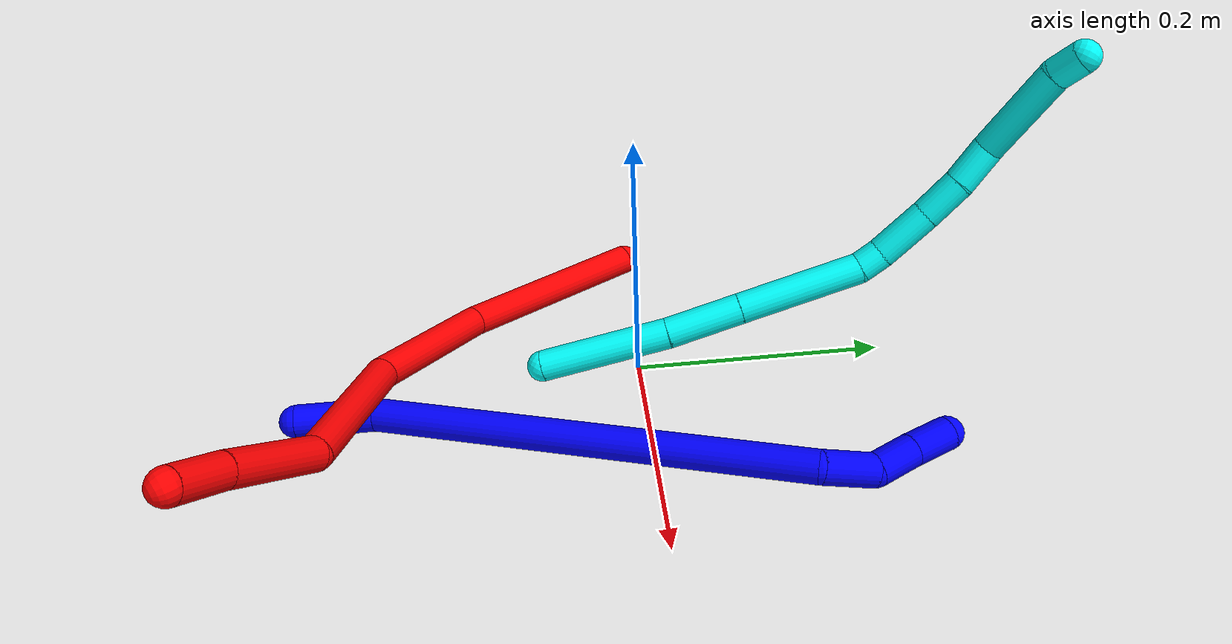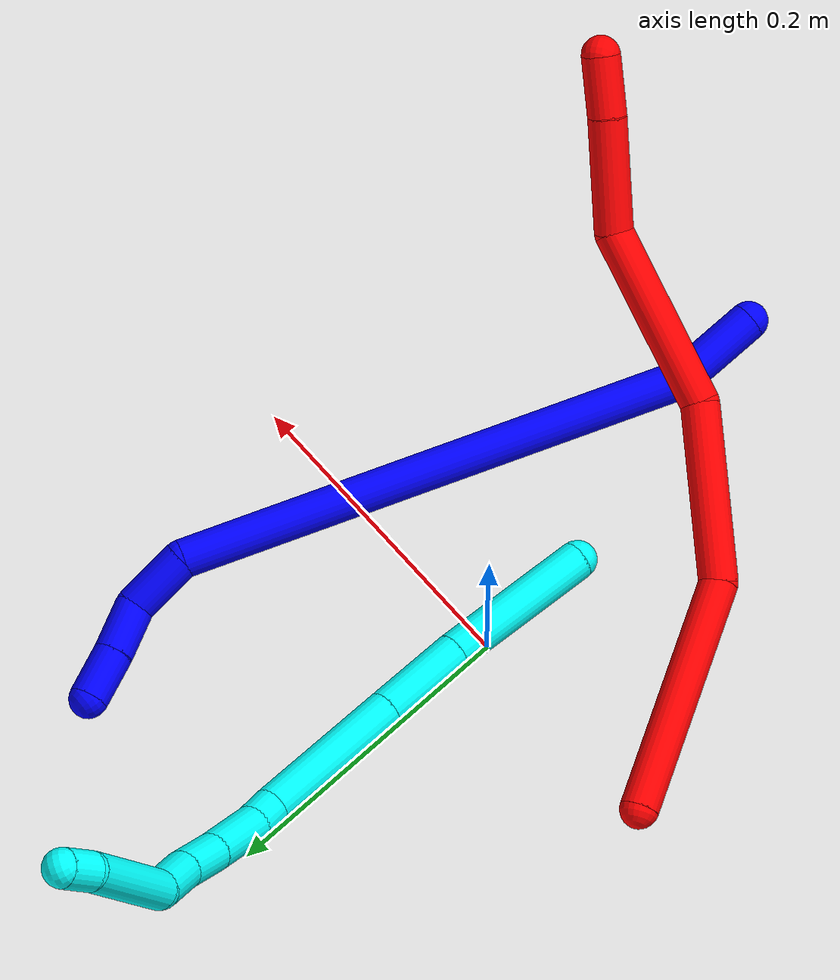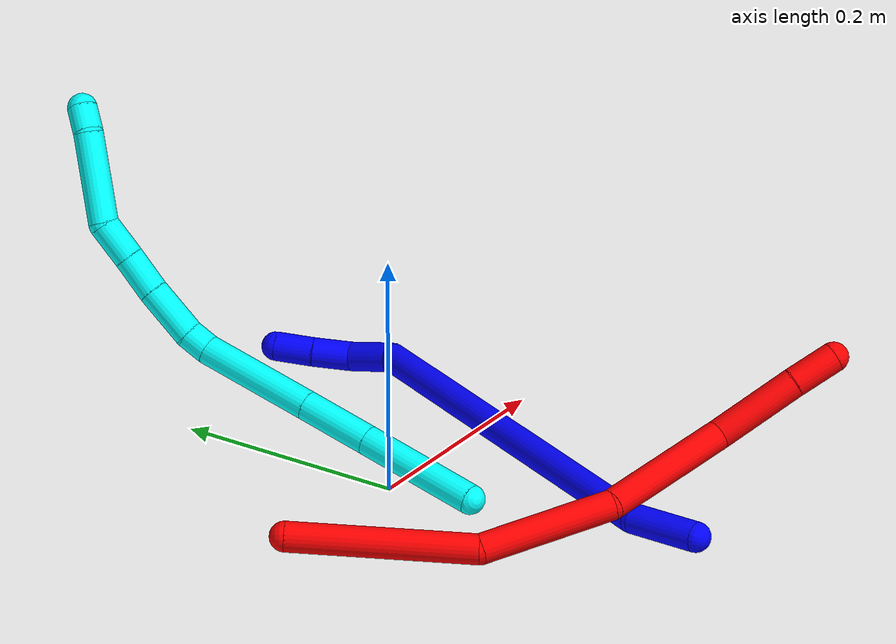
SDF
<sdf version="1.7">
 <world name="default">
  <model name="photoneo_s_sensor">
   <static>1</static>
   <pose>0 0 2 1.57079 1.57079 3.14159</pose>
   <link name="link">
    <inertial><mass>0.1</mass></inertial>
    <sensor name="sensor" type="depth">
     <update_rate>30</update_rate>
     <camera>
      <horizontal_fov>1.22</horizontal_fov>
      <image><width>1920</width><height>1200</height><format>B8G8R8</format></image>
      <clip><near>0.1</near><far>4</far></clip>
      <depth_camera><output>points</output></depth_camera>
     </camera>
     <plugin name="camera_plugin" filename="libgazebo_ros_depth_camera.so">
      <baseline>0.2</baseline>
      <alwaysOn>1</alwaysOn>
      <updateRate>0.0</updateRate>
      <cameraName>camera_ir</cameraName>
      <imageTopicName>/camera/color/image_raw</imageTopicName>
      <cameraInfoTopicName>/camera/color/camera_info</cameraInfoTopicName>
      <depthImageTopicName>/camera/depth/image_raw</depthImageTopicName>
      <depthImageCameraInfoTopicName>/camera/depth/camera_info</depthImageCameraInfoTopicName>
      <pointCloudTopicName>/camera/depth/points</pointCloudTopicName>
      <frameName>fr_optical</frameName>
      <pointCloudCutoff>0.1</pointCloudCutoff>
      <pointCloudCutoffMax>2.0</pointCloudCutoffMax>
      <distortionK1>0</distortionK1>
      <distortionK2>0</distortionK2>
      <distortionK3>0</distortionK3>
      <distortionT1>0</distortionT1>
      <distortionT2>0</distortionT2>
      <CxPrime>0</CxPrime>
      <Cx>0</Cx>
      <Cy>0</Cy>
      <focalLength>0</focalLength>
      <hackBaseline>0</hackBaseline>
     </plugin>
    </sensor>
   </link>
  </model>
  <model name="bin">
   <static>1</static>
   <link name="bottom">
    <collision name="collision-bottom">
     <pose>0 0 -0.01 0 -0 0</pose>
     <geometry><box><size>0.8 0.6 0.02</size></box></geometry>
     <surface>
      <friction><ode><mu>100</mu><mu2>100</mu2></ode></friction>
      <contact><collide_bitmask>65535</collide_bitmask></contact>
     </surface>
    </collision>
   </link>
   <link name="west_wall">
    <collision name="collision-west_wall">
     <pose>-0.41 0 0.1 0 -0 0</pose>
     <geometry><box><size>0.02 0.6 0.2</size></box></geometry>
     <surface>
      <friction><ode><mu>100</mu><mu2>100</mu2></ode></friction>
      <contact><collide_bitmask>65535</collide_bitmask></contact>
     </surface>
    </collision>
   </link>
   <link name="east_wall">
    <collision name="collision-east_wall">
     <pose>0.41 0 0.1 0 -0 0</pose>
     <geometry><box><size>0.02 0.6 0.2</size></box></geometry>
     <surface>
      <friction><ode><mu>100</mu><mu2>100</mu2></ode></friction>
      <contact><collide_bitmask>65535</collide_bitmask></contact>
     </surface>
    </collision>
   </link>
   <link name="south_wall">
    <collision name="collision-south_wall">
     <pose>0 -0.31 0.1 0 -0 0</pose>
     <geometry><box><size>0.8 0.02 0.2</size></box></geometry>
     <surface>
      <friction><ode><mu>100</mu><mu2>100</mu2></ode></friction>
      <contact><collide_bitmask>65535</collide_bitmask></contact>
     </surface>
    </collision>
   </link>
   <link name="north_wall">
    <collision name="collision-north_wall">
     <pose>0 0.31 0.1 0 -0 0</pose>
     <geometry><box><size>0.8 0.02 0.2</size></box></geometry>
     <surface>
      <friction><ode><mu>100</mu><mu2>100</mu2></ode></friction>
      <contact><collide_bitmask>65535</collide_bitmask></contact>
     </surface>
    </collision>
   </link>
  </model>
  <model name="1">
   <static>0</static>
   <link name="1">
    <collision name="collision-cylinder-e_1_1_4">
     <pose>-0.001002 0.000346 0.029081 -0.011899 -0.034436 0.000205</pose>
     <geometry><cylinder><radius>0.0125</radius><length>0.058201</length></cylinder></geometry>
     <surface>
      <friction><ode><mu>1.16</mu><mu2>1.16</mu2><slip1>0</slip1><slip2>0</slip2></ode></friction>
      <contact><ode><kp>1e+06</kp><kd>1</kd><max_vel>0</max_vel><min_depth>0.001</min_depth></ode></contact>
     </surface>
    </collision>
    <visual name="visual-cylinder-e_1_1_4">
     <pose>-0.001002 0.000346 0.029081 -0.011899 -0.034436 0.000205</pose>
     <geometry><cylinder><radius>0.0125</radius><length>0.058201</length></cylinder></geometry>
     <material><ambient>0 0 1 1</ambient></material>
    </visual>
    <collision name="collision-cylinder-e_2_4_5">
     <pose>0.049859 0.017233 0.215816 -0.104536 0.316196 -0.016681</pose>
     <geometry><cylinder><radius>0.0125</radius><length>0.333575</length></cylinder></geometry>
     <surface>
      <friction><ode><mu>1.16</mu><mu2>1.16</mu2><slip1>0</slip1><slip2>0</slip2></ode></friction>
      <contact><ode><kp>1e+06</kp><kd>1</kd><max_vel>0</max_vel><min_depth>0.001</min_depth></ode></contact>
     </surface>
    </collision>
    <visual name="visual-cylinder-e_2_4_5">
     <pose>0.049859 0.017233 0.215816 -0.104536 0.316196 -0.016681</pose>
     <geometry><cylinder><radius>0.0125</radius><length>0.333575</length></cylinder></geometry>
     <material><ambient>0 0 1 1</ambient></material>
    </visual>
    <collision name="collision-cylinder-e_3_5_6">
     <pose>0.098798 0.038088 0.393471 -0.212479 -0.141961 0.015164</pose>
     <geometry><cylinder><radius>0.0125</radius><length>0.041338</length></cylinder></geometry>
     <surface>
      <friction><ode><mu>1.16</mu><mu2>1.16</mu2><slip1>0</slip1><slip2>0</slip2></ode></friction>
      <contact><ode><kp>1e+06</kp><kd>1</kd><max_vel>0</max_vel><min_depth>0.001</min_depth></ode></contact>
     </surface>
    </collision>
    <visual name="visual-cylinder-e_3_5_6">
     <pose>0.098798 0.038088 0.393471 -0.212479 -0.141961 0.015164</pose>
     <geometry><cylinder><radius>0.0125</radius><length>0.041338</length></cylinder></geometry>
     <material><ambient>0 0 1 1</ambient></material>
    </visual>
    <collision name="collision-cylinder-e_4_6_7">
     <pose>0.088992 0.03901 0.428486 0.222249 -0.420399 -0.047604</pose>
     <geometry><cylinder><radius>0.0125</radius><length>0.033723</length></cylinder></geometry>
     <surface>
      <friction><ode><mu>1.16</mu><mu2>1.16</mu2><slip1>0</slip1><slip2>0</slip2></ode></friction>
      <contact><ode><kp>1e+06</kp><kd>1</kd><max_vel>0</max_vel><min_depth>0.001</min_depth></ode></contact>
     </surface>
    </collision>
    <visual name="visual-cylinder-e_4_6_7">
     <pose>0.088992 0.03901 0.428486 0.222249 -0.420399 -0.047604</pose>
     <geometry><cylinder><radius>0.0125</radius><length>0.033723</length></cylinder></geometry>
     <material><ambient>0 0 1 1</ambient></material>
    </visual>
    <collision name="collision-cylinder-e_5_7_2">
     <pose>0.076365 0.032524 0.458745 0.200191 -0.353805 -0.035905</pose>
     <geometry><cylinder><radius>0.0125</radius><length>0.033163</length></cylinder></geometry>
     <surface>
      <friction><ode><mu>1.16</mu><mu2>1.16</mu2><slip1>0</slip1><slip2>0</slip2></ode></friction>
      <contact><ode><kp>1e+06</kp><kd>1</kd><max_vel>0</max_vel><min_depth>0.001</min_depth></ode></contact>
     </surface>
    </collision>
    <visual name="visual-cylinder-e_5_7_2">
     <pose>0.076365 0.032524 0.458745 0.200191 -0.353805 -0.035905</pose>
     <geometry><cylinder><radius>0.0125</radius><length>0.033163</length></cylinder></geometry>
     <material><ambient>0 0 1 1</ambient></material>
    </visual>
    <collision name="collision-sphere-2">
     <pose>0.07062 0.029431 0.473989 0 -0 0</pose>
     <geometry><sphere><radius>0.0125</radius></sphere></geometry>
     <surface>
      <friction><ode><mu>1.16</mu><mu2>1.16</mu2><slip1>0</slip1><slip2>0</slip2></ode></friction>
      <contact><ode><kp>1e+06</kp><kd>1</kd><max_vel>0</max_vel><min_depth>0.001</min_depth></ode></contact>
     </surface>
    </collision>
    <visual name="visual-sphere-2">
     <pose>0.07062 0.029431 0.473989 0 -0 0</pose>
     <geometry><sphere><radius>0.0125</radius></sphere></geometry>
     <material><ambient>0 0 1 1</ambient></material>
    </visual>
    <collision name="collision-sphere-7">
     <pose>0.08211 0.035617 0.443501 0 -0 0</pose>
     <geometry><sphere><radius>0.0125</radius></sphere></geometry>
     <surface>
      <friction><ode><mu>1.16</mu><mu2>1.16</mu2><slip1>0</slip1><slip2>0</slip2></ode></friction>
      <contact><ode><kp>1e+06</kp><kd>1</kd><max_vel>0</max_vel><min_depth>0.001</min_depth></ode></contact>
     </surface>
    </collision>
    <visual name="visual-sphere-7">
     <pose>0.08211 0.035617 0.443501 0 -0 0</pose>
     <geometry><sphere><radius>0.0125</radius></sphere></geometry>
     <material><ambient>0 0 1 1</ambient></material>
    </visual>
    <collision name="collision-sphere-6">
     <pose>0.095873 0.042403 0.413472 0 -0 0</pose>
     <geometry><sphere><radius>0.0125</radius></sphere></geometry>
     <surface>
      <friction><ode><mu>1.16</mu><mu2>1.16</mu2><slip1>0</slip1><slip2>0</slip2></ode></friction>
      <contact><ode><kp>1e+06</kp><kd>1</kd><max_vel>0</max_vel><min_depth>0.001</min_depth></ode></contact>
     </surface>
    </collision>
    <visual name="visual-sphere-6">
     <pose>0.095873 0.042403 0.413472 0 -0 0</pose>
     <geometry><sphere><radius>0.0125</radius></sphere></geometry>
     <material><ambient>0 0 1 1</ambient></material>
    </visual>
    <collision name="collision-sphere-5">
     <pose>0.101722 0.033774 0.37347 0 -0 0</pose>
     <geometry><sphere><radius>0.0125</radius></sphere></geometry>
     <surface>
      <friction><ode><mu>1.16</mu><mu2>1.16</mu2><slip1>0</slip1><slip2>0</slip2></ode></friction>
      <contact><ode><kp>1e+06</kp><kd>1</kd><max_vel>0</max_vel><min_depth>0.001</min_depth></ode></contact>
     </surface>
    </collision>
    <visual name="visual-sphere-5">
     <pose>0.101722 0.033774 0.37347 0 -0 0</pose>
     <geometry><sphere><radius>0.0125</radius></sphere></geometry>
     <material><ambient>0 0 1 1</ambient></material>
    </visual>
    <collision name="collision-sphere-1">
     <geometry><sphere><radius>0.0125</radius></sphere></geometry>
     <surface>
      <friction><ode><mu>1.16</mu><mu2>1.16</mu2><slip1>0</slip1><slip2>0</slip2></ode></friction>
      <contact><ode><kp>1e+06</kp><kd>1</kd><max_vel>0</max_vel><min_depth>0.001</min_depth></ode></contact>
     </surface>
    </collision>
    <visual name="visual-sphere-1">
     <geometry><sphere><radius>0.0125</radius></sphere></geometry>
     <material><ambient>0 0 1 1</ambient></material>
    </visual>
    <collision name="collision-sphere-4">
     <pose>-0.002004 0.000692 0.058163 0 -0 0</pose>
     <geometry><sphere><radius>0.0125</radius></sphere></geometry>
     <surface>
      <friction><ode><mu>1.16</mu><mu2>1.16</mu2><slip1>0</slip1><slip2>0</slip2></ode></friction>
      <contact><ode><kp>1e+06</kp><kd>1</kd><max_vel>0</max_vel><min_depth>0.001</min_depth></ode></contact>
     </surface>
    </collision>
    <visual name="visual-sphere-4">
     <pose>-0.002004 0.000692 0.058163 0 -0 0</pose>
     <geometry><sphere><radius>0.0125</radius></sphere></geometry>
     <material><ambient>0 0 1 1</ambient></material>
    </visual>
    <inertial>
     <pose>0.052382 0.019474 0.239224 0 -0 0</pose>
     <mass>0.5</mass>
     <inertia>
      <ixx>0.002942</ixx>
      <ixy>0</ixy>
      <ixz>0</ixz>
      <iyy>0.003078</iyy>
      <iyz>0</iyz>
      <izz>-0.001232</izz>
     </inertia>
    </inertial>
   </link>
   <pose>0.045534 -0.261765 0.011474 -1.54544 -0.373732 -0.039487</pose>
  </model>
  <model name="2">
   <static>0</static>
   <link name="2">
    <collision name="collision-cylinder-e_1_1_4">
     <pose>-0.005512 0.004189 0.07675 -0.054523 -0.071584 0.001953</pose>
     <geometry><cylinder><radius>0.0125</radius><length>0.154123</length></cylinder></geometry>
     <surface>
      <friction><ode><mu>1.16</mu><mu2>1.16</mu2><slip1>0</slip1><slip2>0</slip2></ode></friction>
      <contact><ode><kp>1e+06</kp><kd>1</kd><max_vel>0</max_vel><min_depth>0.001</min_depth></ode></contact>
     </surface>
    </collision>
    <visual name="visual-cylinder-e_1_1_4">
     <pose>-0.005512 0.004189 0.07675 -0.054523 -0.071584 0.001953</pose>
     <geometry><cylinder><radius>0.0125</radius><length>0.154123</length></cylinder></geometry>
     <material><ambient>1 0 0 1</ambient></material>
    </visual>
    <collision name="collision-cylinder-e_2_4_5">
     <pose>0.010562 0.00473 0.205711 0.069759 0.391175 0.013826</pose>
     <geometry><cylinder><radius>0.0125</radius><length>0.113229</length></cylinder></geometry>
     <surface>
      <friction><ode><mu>1.16</mu><mu2>1.16</mu2><slip1>0</slip1><slip2>0</slip2></ode></friction>
      <contact><ode><kp>1e+06</kp><kd>1</kd><max_vel>0</max_vel><min_depth>0.001</min_depth></ode></contact>
     </surface>
    </collision>
    <visual name="visual-cylinder-e_2_4_5">
     <pose>0.010562 0.00473 0.205711 0.069759 0.391175 0.013826</pose>
     <geometry><cylinder><radius>0.0125</radius><length>0.113229</length></cylinder></geometry>
     <material><ambient>1 0 0 1</ambient></material>
    </visual>
    <collision name="collision-cylinder-e_3_5_6">
     <pose>0.069787 -0.014288 0.301711 0.337545 0.681441 0.120679</pose>
     <geometry><cylinder><radius>0.0125</radius><length>0.119505</length></cylinder></geometry>
     <surface>
      <friction><ode><mu>1.16</mu><mu2>1.16</mu2><slip1>0</slip1><slip2>0</slip2></ode></friction>
      <contact><ode><kp>1e+06</kp><kd>1</kd><max_vel>0</max_vel><min_depth>0.001</min_depth></ode></contact>
     </surface>
    </collision>
    <visual name="visual-cylinder-e_3_5_6">
     <pose>0.069787 -0.014288 0.301711 0.337545 0.681441 0.120679</pose>
     <geometry><cylinder><radius>0.0125</radius><length>0.119505</length></cylinder></geometry>
     <material><ambient>1 0 0 1</ambient></material>
    </visual>
    <collision name="collision-cylinder-e_4_6_7">
     <pose>0.127453 -0.021565 0.375608 -0.262536 0.571003 -0.077466</pose>
     <geometry><cylinder><radius>0.0125</radius><length>0.074109</length></cylinder></geometry>
     <surface>
      <friction><ode><mu>1.16</mu><mu2>1.16</mu2><slip1>0</slip1><slip2>0</slip2></ode></friction>
      <contact><ode><kp>1e+06</kp><kd>1</kd><max_vel>0</max_vel><min_depth>0.001</min_depth></ode></contact>
     </surface>
    </collision>
    <visual name="visual-cylinder-e_4_6_7">
     <pose>0.127453 -0.021565 0.375608 -0.262536 0.571003 -0.077466</pose>
     <geometry><cylinder><radius>0.0125</radius><length>0.074109</length></cylinder></geometry>
     <material><ambient>1 0 0 1</ambient></material>
    </visual>
    <collision name="collision-cylinder-e_5_7_2">
     <pose>0.158024 -0.010706 0.421904 -0.169351 0.570711 -0.04979</pose>
     <geometry><cylinder><radius>0.0125</radius><length>0.039033</length></cylinder></geometry>
     <surface>
      <friction><ode><mu>1.16</mu><mu2>1.16</mu2><slip1>0</slip1><slip2>0</slip2></ode></friction>
      <contact><ode><kp>1e+06</kp><kd>1</kd><max_vel>0</max_vel><min_depth>0.001</min_depth></ode></contact>
     </surface>
    </collision>
    <visual name="visual-cylinder-e_5_7_2">
     <pose>0.158024 -0.010706 0.421904 -0.169351 0.570711 -0.04979</pose>
     <geometry><cylinder><radius>0.0125</radius><length>0.039033</length></cylinder></geometry>
     <material><ambient>1 0 0 1</ambient></material>
    </visual>
    <collision name="collision-sphere-2">
     <pose>0.168567 -0.007938 0.438093 0 -0 0</pose>
     <geometry><sphere><radius>0.0125</radius></sphere></geometry>
     <surface>
      <friction><ode><mu>1.16</mu><mu2>1.16</mu2><slip1>0</slip1><slip2>0</slip2></ode></friction>
      <contact><ode><kp>1e+06</kp><kd>1</kd><max_vel>0</max_vel><min_depth>0.001</min_depth></ode></contact>
     </surface>
    </collision>
    <visual name="visual-sphere-2">
     <pose>0.168567 -0.007938 0.438093 0 -0 0</pose>
     <geometry><sphere><radius>0.0125</radius></sphere></geometry>
     <material><ambient>1 0 0 1</ambient></material>
    </visual>
    <collision name="collision-sphere-7">
     <pose>0.14748 -0.013474 0.405716 0 -0 0</pose>
     <geometry><sphere><radius>0.0125</radius></sphere></geometry>
     <surface>
      <friction><ode><mu>1.16</mu><mu2>1.16</mu2><slip1>0</slip1><slip2>0</slip2></ode></friction>
      <contact><ode><kp>1e+06</kp><kd>1</kd><max_vel>0</max_vel><min_depth>0.001</min_depth></ode></contact>
     </surface>
    </collision>
    <visual name="visual-sphere-7">
     <pose>0.14748 -0.013474 0.405716 0 -0 0</pose>
     <geometry><sphere><radius>0.0125</radius></sphere></geometry>
     <material><ambient>1 0 0 1</ambient></material>
    </visual>
    <collision name="collision-sphere-6">
     <pose>0.107426 -0.029657 0.3455 0 -0 0</pose>
     <geometry><sphere><radius>0.0125</radius></sphere></geometry>
     <surface>
      <friction><ode><mu>1.16</mu><mu2>1.16</mu2><slip1>0</slip1><slip2>0</slip2></ode></friction>
      <contact><ode><kp>1e+06</kp><kd>1</kd><max_vel>0</max_vel><min_depth>0.001</min_depth></ode></contact>
     </surface>
    </collision>
    <visual name="visual-sphere-6">
     <pose>0.107426 -0.029657 0.3455 0 -0 0</pose>
     <geometry><sphere><radius>0.0125</radius></sphere></geometry>
     <material><ambient>1 0 0 1</ambient></material>
    </visual>
    <collision name="collision-sphere-5">
     <pose>0.032148 0.001081 0.257922 0 -0 0</pose>
     <geometry><sphere><radius>0.0125</radius></sphere></geometry>
     <surface>
      <friction><ode><mu>1.16</mu><mu2>1.16</mu2><slip1>0</slip1><slip2>0</slip2></ode></friction>
      <contact><ode><kp>1e+06</kp><kd>1</kd><max_vel>0</max_vel><min_depth>0.001</min_depth></ode></contact>
     </surface>
    </collision>
    <visual name="visual-sphere-5">
     <pose>0.032148 0.001081 0.257922 0 -0 0</pose>
     <geometry><sphere><radius>0.0125</radius></sphere></geometry>
     <material><ambient>1 0 0 1</ambient></material>
    </visual>
    <collision name="collision-sphere-1">
     <geometry><sphere><radius>0.0125</radius></sphere></geometry>
     <surface>
      <friction><ode><mu>1.16</mu><mu2>1.16</mu2><slip1>0</slip1><slip2>0</slip2></ode></friction>
      <contact><ode><kp>1e+06</kp><kd>1</kd><max_vel>0</max_vel><min_depth>0.001</min_depth></ode></contact>
     </surface>
    </collision>
    <visual name="visual-sphere-1">
     <geometry><sphere><radius>0.0125</radius></sphere></geometry>
     <material><ambient>1 0 0 1</ambient></material>
    </visual>
    <collision name="collision-sphere-4">
     <pose>-0.011023 0.008378 0.1535 0 -0 0</pose>
     <geometry><sphere><radius>0.0125</radius></sphere></geometry>
     <surface>
      <friction><ode><mu>1.16</mu><mu2>1.16</mu2><slip1>0</slip1><slip2>0</slip2></ode></friction>
      <contact><ode><kp>1e+06</kp><kd>1</kd><max_vel>0</max_vel><min_depth>0.001</min_depth></ode></contact>
     </surface>
    </collision>
    <visual name="visual-sphere-4">
     <pose>-0.011023 0.008378 0.1535 0 -0 0</pose>
     <geometry><sphere><radius>0.0125</radius></sphere></geometry>
     <material><ambient>1 0 0 1</ambient></material>
    </visual>
    <inertial>
     <pose>0.0486 -0.005085 0.230963 0 -0 0</pose>
     <mass>0.5</mass>
     <inertia>
      <ixx>0.000602</ixx>
      <ixy>0</ixy>
      <ixz>0</ixz>
      <iyy>0.000632</iyy>
      <iyz>0</iyz>
      <izz>-8.7e-05</izz>
     </inertia>
    </inertial>
   </link>
   <pose>-0.142626 0.002413 0.017612 1.60759 -0.706862 0.571937</pose>
  </model>
  <model name="3">
   <static>0</static>
   <link name="3">
    <collision name="collision-cylinder-e_1_1_4">
     <pose>-0.021721 0.026399 0.039145 -0.59333 -0.431173 0.133685</pose>
     <geometry><cylinder><radius>0.0125</radius><length>0.103944</length></cylinder></geometry>
     <surface>
      <friction><ode><mu>1.16</mu><mu2>1.16</mu2><slip1>0</slip1><slip2>0</slip2></ode></friction>
      <contact><ode><kp>1e+06</kp><kd>1</kd><max_vel>0</max_vel><min_depth>0.001</min_depth></ode></contact>
     </surface>
    </collision>
    <visual name="visual-cylinder-e_1_1_4">
     <pose>-0.021721 0.026399 0.039145 -0.59333 -0.431173 0.133685</pose>
     <geometry><cylinder><radius>0.0125</radius><length>0.103944</length></cylinder></geometry>
     <material><ambient>0.003922 1 0.996078 1</ambient></material>
    </visual>
    <collision name="collision-cylinder-e_2_4_5">
     <pose>-0.056556 0.069967 0.099634 -0.677416 -0.446521 0.159629</pose>
     <geometry><cylinder><radius>0.0125</radius><length>0.060738</length></cylinder></geometry>
     <surface>
      <friction><ode><mu>1.16</mu><mu2>1.16</mu2><slip1>0</slip1><slip2>0</slip2></ode></friction>
      <contact><ode><kp>1e+06</kp><kd>1</kd><max_vel>0</max_vel><min_depth>0.001</min_depth></ode></contact>
     </surface>
    </collision>
    <visual name="visual-cylinder-e_2_4_5">
     <pose>-0.056556 0.069967 0.099634 -0.677416 -0.446521 0.159629</pose>
     <geometry><cylinder><radius>0.0125</radius><length>0.060738</length></cylinder></geometry>
     <material><ambient>0.003922 1 0.996078 1</ambient></material>
    </visual>
    <collision name="collision-cylinder-e_3_5_6">
     <pose>-0.091168 0.115599 0.156275 -0.678638 -0.442717 0.158536</pose>
     <geometry><cylinder><radius>0.0125</radius><length>0.100364</length></cylinder></geometry>
     <surface>
      <friction><ode><mu>1.16</mu><mu2>1.16</mu2><slip1>0</slip1><slip2>0</slip2></ode></friction>
      <contact><ode><kp>1e+06</kp><kd>1</kd><max_vel>0</max_vel><min_depth>0.001</min_depth></ode></contact>
     </surface>
    </collision>
    <visual name="visual-cylinder-e_3_5_6">
     <pose>-0.091168 0.115599 0.156275 -0.678638 -0.442717 0.158536</pose>
     <geometry><cylinder><radius>0.0125</radius><length>0.100364</length></cylinder></geometry>
     <material><ambient>0.003922 1 0.996078 1</ambient></material>
    </visual>
    <collision name="collision-cylinder-e_4_6_7">
     <pose>-0.118799 0.150633 0.196464 -0.930723 -0.642686 0.331246</pose>
     <geometry><cylinder><radius>0.0125</radius><length>0.020465</length></cylinder></geometry>
     <surface>
      <friction><ode><mu>1.16</mu><mu2>1.16</mu2><slip1>0</slip1><slip2>0</slip2></ode></friction>
      <contact><ode><kp>1e+06</kp><kd>1</kd><max_vel>0</max_vel><min_depth>0.001</min_depth></ode></contact>
     </surface>
    </collision>
    <visual name="visual-cylinder-e_4_6_7">
     <pose>-0.118799 0.150633 0.196464 -0.930723 -0.642686 0.331246</pose>
     <geometry><cylinder><radius>0.0125</radius><length>0.020465</length></cylinder></geometry>
     <material><ambient>0.003922 1 0.996078 1</ambient></material>
    </visual>
    <collision name="collision-cylinder-e_5_7_8">
     <pose>-0.142069 0.170055 0.209764 -0.991462 -0.840079 0.473962</pose>
     <geometry><cylinder><radius>0.0125</radius><length>0.046024</length></cylinder></geometry>
     <surface>
      <friction><ode><mu>1.16</mu><mu2>1.16</mu2><slip1>0</slip1><slip2>0</slip2></ode></friction>
      <contact><ode><kp>1e+06</kp><kd>1</kd><max_vel>0</max_vel><min_depth>0.001</min_depth></ode></contact>
     </surface>
    </collision>
    <visual name="visual-cylinder-e_5_7_8">
     <pose>-0.142069 0.170055 0.209764 -0.991462 -0.840079 0.473962</pose>
     <geometry><cylinder><radius>0.0125</radius><length>0.046024</length></cylinder></geometry>
     <material><ambient>0.003922 1 0.996078 1</ambient></material>
    </visual>
    <collision name="collision-cylinder-e_6_8_9">
     <pose>-0.173013 0.192014 0.223643 -1.02984 -0.914983 0.543379</pose>
     <geometry><cylinder><radius>0.0125</radius><length>0.034843</length></cylinder></geometry>
     <surface>
      <friction><ode><mu>1.16</mu><mu2>1.16</mu2><slip1>0</slip1><slip2>0</slip2></ode></friction>
      <contact><ode><kp>1e+06</kp><kd>1</kd><max_vel>0</max_vel><min_depth>0.001</min_depth></ode></contact>
     </surface>
    </collision>
    <visual name="visual-cylinder-e_6_8_9">
     <pose>-0.173013 0.192014 0.223643 -1.02984 -0.914983 0.543379</pose>
     <geometry><cylinder><radius>0.0125</radius><length>0.034843</length></cylinder></geometry>
     <material><ambient>0.003922 1 0.996078 1</ambient></material>
    </visual>
    <collision name="collision-cylinder-e_7_9_10">
     <pose>-0.200093 0.211324 0.232534 -1.2474 -0.889505 0.660705</pose>
     <geometry><cylinder><radius>0.0125</radius><length>0.034173</length></cylinder></geometry>
     <surface>
      <friction><ode><mu>1.16</mu><mu2>1.16</mu2><slip1>0</slip1><slip2>0</slip2></ode></friction>
      <contact><ode><kp>1e+06</kp><kd>1</kd><max_vel>0</max_vel><min_depth>0.001</min_depth></ode></contact>
     </surface>
    </collision>
    <visual name="visual-cylinder-e_7_9_10">
     <pose>-0.200093 0.211324 0.232534 -1.2474 -0.889505 0.660705</pose>
     <geometry><cylinder><radius>0.0125</radius><length>0.034173</length></cylinder></geometry>
     <material><ambient>0.003922 1 0.996078 1</ambient></material>
    </visual>
    <collision name="collision-cylinder-e_8_10_11">
     <pose>-0.250819 0.226909 0.241874 -0.73772 -1.36035 0.606135</pose>
     <geometry><cylinder><radius>0.0125</radius><length>0.076597</length></cylinder></geometry>
     <surface>
      <friction><ode><mu>1.16</mu><mu2>1.16</mu2><slip1>0</slip1><slip2>0</slip2></ode></friction>
      <contact><ode><kp>1e+06</kp><kd>1</kd><max_vel>0</max_vel><min_depth>0.001</min_depth></ode></contact>
     </surface>
    </collision>
    <visual name="visual-cylinder-e_8_10_11">
     <pose>-0.250819 0.226909 0.241874 -0.73772 -1.36035 0.606135</pose>
     <geometry><cylinder><radius>0.0125</radius><length>0.076597</length></cylinder></geometry>
     <material><ambient>0.003922 1 0.996078 1</ambient></material>
    </visual>
    <collision name="collision-cylinder-e_9_11_2">
     <pose>-0.29866 0.233258 0.252453 -0.204916 -1.14125 0.131797</pose>
     <geometry><cylinder><radius>0.0125</radius><length>0.022851</length></cylinder></geometry>
     <surface>
      <friction><ode><mu>1.16</mu><mu2>1.16</mu2><slip1>0</slip1><slip2>0</slip2></ode></friction>
      <contact><ode><kp>1e+06</kp><kd>1</kd><max_vel>0</max_vel><min_depth>0.001</min_depth></ode></contact>
     </surface>
    </collision>
    <visual name="visual-cylinder-e_9_11_2">
     <pose>-0.29866 0.233258 0.252453 -0.204916 -1.14125 0.131797</pose>
     <geometry><cylinder><radius>0.0125</radius><length>0.022851</length></cylinder></geometry>
     <material><ambient>0.003922 1 0.996078 1</ambient></material>
    </visual>
    <collision name="collision-sphere-2">
     <pose>-0.309048 0.234226 0.257112 0 -0 0</pose>
     <geometry><sphere><radius>0.0125</radius></sphere></geometry>
     <surface>
      <friction><ode><mu>1.16</mu><mu2>1.16</mu2><slip1>0</slip1><slip2>0</slip2></ode></friction>
      <contact><ode><kp>1e+06</kp><kd>1</kd><max_vel>0</max_vel><min_depth>0.001</min_depth></ode></contact>
     </surface>
    </collision>
    <visual name="visual-sphere-2">
     <pose>-0.309048 0.234226 0.257112 0 -0 0</pose>
     <geometry><sphere><radius>0.0125</radius></sphere></geometry>
     <material><ambient>0.003922 1 0.996078 1</ambient></material>
    </visual>
    <collision name="collision-sphere-11">
     <pose>-0.288272 0.23229 0.247794 0 -0 0</pose>
     <geometry><sphere><radius>0.0125</radius></sphere></geometry>
     <surface>
      <friction><ode><mu>1.16</mu><mu2>1.16</mu2><slip1>0</slip1><slip2>0</slip2></ode></friction>
      <contact><ode><kp>1e+06</kp><kd>1</kd><max_vel>0</max_vel><min_depth>0.001</min_depth></ode></contact>
     </surface>
    </collision>
    <visual name="visual-sphere-11">
     <pose>-0.288272 0.23229 0.247794 0 -0 0</pose>
     <geometry><sphere><radius>0.0125</radius></sphere></geometry>
     <material><ambient>0.003922 1 0.996078 1</ambient></material>
    </visual>
    <collision name="collision-sphere-10">
     <pose>-0.213365 0.221527 0.235953 0 -0 0</pose>
     <geometry><sphere><radius>0.0125</radius></sphere></geometry>
     <surface>
      <friction><ode><mu>1.16</mu><mu2>1.16</mu2><slip1>0</slip1><slip2>0</slip2></ode></friction>
      <contact><ode><kp>1e+06</kp><kd>1</kd><max_vel>0</max_vel><min_depth>0.001</min_depth></ode></contact>
     </surface>
    </collision>
    <visual name="visual-sphere-10">
     <pose>-0.213365 0.221527 0.235953 0 -0 0</pose>
     <geometry><sphere><radius>0.0125</radius></sphere></geometry>
     <material><ambient>0.003922 1 0.996078 1</ambient></material>
    </visual>
    <collision name="collision-sphere-9">
     <pose>-0.186821 0.201121 0.229114 0 -0 0</pose>
     <geometry><sphere><radius>0.0125</radius></sphere></geometry>
     <surface>
      <friction><ode><mu>1.16</mu><mu2>1.16</mu2><slip1>0</slip1><slip2>0</slip2></ode></friction>
      <contact><ode><kp>1e+06</kp><kd>1</kd><max_vel>0</max_vel><min_depth>0.001</min_depth></ode></contact>
     </surface>
    </collision>
    <visual name="visual-sphere-9">
     <pose>-0.186821 0.201121 0.229114 0 -0 0</pose>
     <geometry><sphere><radius>0.0125</radius></sphere></geometry>
     <material><ambient>0.003922 1 0.996078 1</ambient></material>
    </visual>
    <collision name="collision-sphere-4">
     <pose>-0.043442 0.052799 0.078291 0 -0 0</pose>
     <geometry><sphere><radius>0.0125</radius></sphere></geometry>
     <surface>
      <friction><ode><mu>1.16</mu><mu2>1.16</mu2><slip1>0</slip1><slip2>0</slip2></ode></friction>
      <contact><ode><kp>1e+06</kp><kd>1</kd><max_vel>0</max_vel><min_depth>0.001</min_depth></ode></contact>
     </surface>
    </collision>
    <visual name="visual-sphere-4">
     <pose>-0.043442 0.052799 0.078291 0 -0 0</pose>
     <geometry><sphere><radius>0.0125</radius></sphere></geometry>
     <material><ambient>0.003922 1 0.996078 1</ambient></material>
    </visual>
    <collision name="collision-sphere-1">
     <geometry><sphere><radius>0.0125</radius></sphere></geometry>
     <surface>
      <friction><ode><mu>1.16</mu><mu2>1.16</mu2><slip1>0</slip1><slip2>0</slip2></ode></friction>
      <contact><ode><kp>1e+06</kp><kd>1</kd><max_vel>0</max_vel><min_depth>0.001</min_depth></ode></contact>
     </surface>
    </collision>
    <visual name="visual-sphere-1">
     <geometry><sphere><radius>0.0125</radius></sphere></geometry>
     <material><ambient>0.003922 1 0.996078 1</ambient></material>
    </visual>
    <collision name="collision-sphere-8">
     <pose>-0.159206 0.182907 0.218172 0 -0 0</pose>
     <geometry><sphere><radius>0.0125</radius></sphere></geometry>
     <surface>
      <friction><ode><mu>1.16</mu><mu2>1.16</mu2><slip1>0</slip1><slip2>0</slip2></ode></friction>
      <contact><ode><kp>1e+06</kp><kd>1</kd><max_vel>0</max_vel><min_depth>0.001</min_depth></ode></contact>
     </surface>
    </collision>
    <visual name="visual-sphere-8">
     <pose>-0.159206 0.182907 0.218172 0 -0 0</pose>
     <geometry><sphere><radius>0.0125</radius></sphere></geometry>
     <material><ambient>0.003922 1 0.996078 1</ambient></material>
    </visual>
    <collision name="collision-sphere-5">
     <pose>-0.06967 0.087135 0.120977 0 -0 0</pose>
     <geometry><sphere><radius>0.0125</radius></sphere></geometry>
     <surface>
      <friction><ode><mu>1.16</mu><mu2>1.16</mu2><slip1>0</slip1><slip2>0</slip2></ode></friction>
      <contact><ode><kp>1e+06</kp><kd>1</kd><max_vel>0</max_vel><min_depth>0.001</min_depth></ode></contact>
     </surface>
    </collision>
    <visual name="visual-sphere-5">
     <pose>-0.06967 0.087135 0.120977 0 -0 0</pose>
     <geometry><sphere><radius>0.0125</radius></sphere></geometry>
     <material><ambient>0.003922 1 0.996078 1</ambient></material>
    </visual>
    <collision name="collision-sphere-6">
     <pose>-0.112666 0.144063 0.191572 0 -0 0</pose>
     <geometry><sphere><radius>0.0125</radius></sphere></geometry>
     <surface>
      <friction><ode><mu>1.16</mu><mu2>1.16</mu2><slip1>0</slip1><slip2>0</slip2></ode></friction>
      <contact><ode><kp>1e+06</kp><kd>1</kd><max_vel>0</max_vel><min_depth>0.001</min_depth></ode></contact>
     </surface>
    </collision>
    <visual name="visual-sphere-6">
     <pose>-0.112666 0.144063 0.191572 0 -0 0</pose>
     <geometry><sphere><radius>0.0125</radius></sphere></geometry>
     <material><ambient>0.003922 1 0.996078 1</ambient></material>
    </visual>
    <collision name="collision-sphere-7">
     <pose>-0.124932 0.157203 0.201356 0 -0 0</pose>
     <geometry><sphere><radius>0.0125</radius></sphere></geometry>
     <surface>
      <friction><ode><mu>1.16</mu><mu2>1.16</mu2><slip1>0</slip1><slip2>0</slip2></ode></friction>
      <contact><ode><kp>1e+06</kp><kd>1</kd><max_vel>0</max_vel><min_depth>0.001</min_depth></ode></contact>
     </surface>
    </collision>
    <visual name="visual-sphere-7">
     <pose>-0.124932 0.157203 0.201356 0 -0 0</pose>
     <geometry><sphere><radius>0.0125</radius></sphere></geometry>
     <material><ambient>0.003922 1 0.996078 1</ambient></material>
    </visual>
    <inertial>
     <pose>-0.125431 0.132256 0.159029 0 -0 0</pose>
     <mass>0.5</mass>
     <inertia><ixx>0.00022</ixx><ixy>0</ixy><ixz>0</ixz><iyy>0.000287</iyy><iyz>0</iyz><izz>3.6e-05</izz></inertia>
    </inertial>
   </link>
   <pose>0.002074 -0.077161 0.011492 2.57264 1.14494 -2.62744</pose>
  </model>
 </world>
</sdf>
